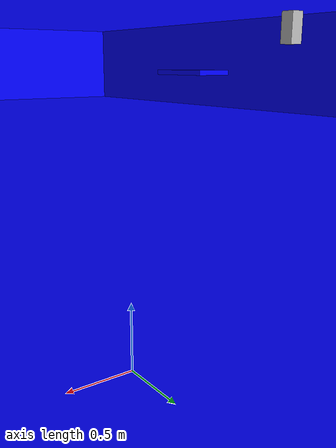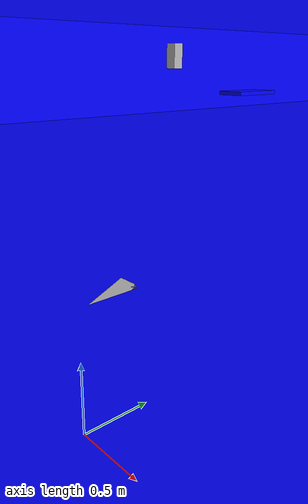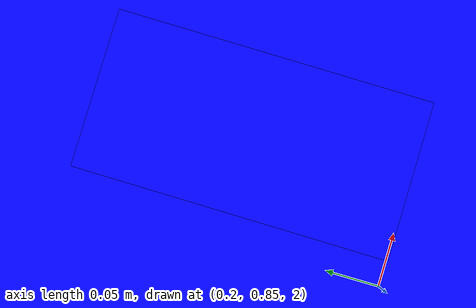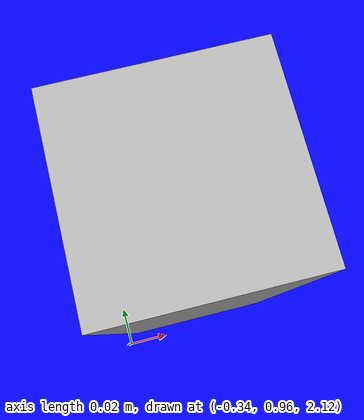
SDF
<sdf version="1.4">
 <world name="default">
  <scene><ambient>0.4 0.4 0.4 1</ambient><background>0.7 0.7 0.7 1</background><shadows>1</shadows></scene>
  <include><uri>model://red_plate</uri><pose>-0.3 1 2 0 0 1.57</pose><static>false</static></include>
  <include><uri>model://blue_plate</uri><pose>0.3 1 2 0 0 1.57</pose><static>false</static></include>
  <include><uri>model://gray_stone</uri><pose>-0.3 1 2.2 0 0 1.57</pose><static>false</static></include>
  <include><uri>model://robot_base</uri></include>
 </world>
</sdf>

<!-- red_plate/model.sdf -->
<sdf version="1.6">
  <model name="red_plate">
    <static>true</static>
    <link name="link">
      <collision name="body_collision">
        <geometry>
          <box>
            <size>30 15 2</size>
          </box>
        </geometry>
      </collision>
      <visual name="body_visual">
        <pose>0 0 0 0 0 0</pose>
        <geometry>
          <box>
            <size>30 15 2</size>
          </box>
        </geometry>
        <material> <!-- stone material -->
          <ambient>0 0 1 1</ambient>
          <diffuse>0 0 1 1</diffuse>
          <specular>0 0 0 0</specular>
          <emissive>0 0 0 1</emissive>
        </material> <!-- End wheel material -->
      </visual>
    </link>
  </model>
</sdf>

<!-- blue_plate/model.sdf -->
<sdf version="1.6">
  <model name="blue_plate">
    <static>true</static>
    <link name="link">
      <collision name="body_collision">
        <geometry>
          <box>
            <size>0.3 0.15 0.02</size>
          </box>
        </geometry>
      </collision>
      <visual name="body_visual">
        <pose>0 0 0 0 0 0</pose>
        <geometry>
          <box>
            <size>0.3 0.15 0.02</size>
          </box>
        </geometry>
        <material> <!-- stone material -->
          <ambient>0 0 1 1</ambient>
          <diffuse>0 0 1 1</diffuse>
          <specular>0 0 0 0</specular>
          <emissive>0 0 0 1</emissive>
        </material> <!-- End wheel material -->
      </visual>
    </link>
  </model>
</sdf>

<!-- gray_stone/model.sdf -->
<sdf version="1.6">
  <model name="gray_stone">
    <static>true</static>
    <link name="link">
      <collision name="body_collision">
        <geometry>
          <box>
            <size>0.07 0.07 0.15</size>
          </box>
        </geometry>
      </collision>
      <visual name="body_visual">
        <pose>0 0 0 0 0 0</pose>
        <geometry>
          <box>
            <size>0.07 0.07 0.15</size>
          </box>
        </geometry>
      </visual>
    </link>
  </model>
</sdf>

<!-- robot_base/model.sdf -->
<sdf version="1.6">
  <model name="robot_base">
    <static>true</static>
    <link name="link">
      <collision name="body_collision">
        <pose>0 0 0.5 0 0 0</pose>
        <geometry>
          <box>
            <size>0.5 0.5 1</size>
          </box>
        </geometry>
      </collision>
      <visual name="body_visual">
        <pose>0 0 0.5 0 0 0</pose>
        <geometry>
          <box>
            <size>0.5 0.5 1</size>
          </box>
        </geometry>
      </visual>
    </link>
  </model>
</sdf>
